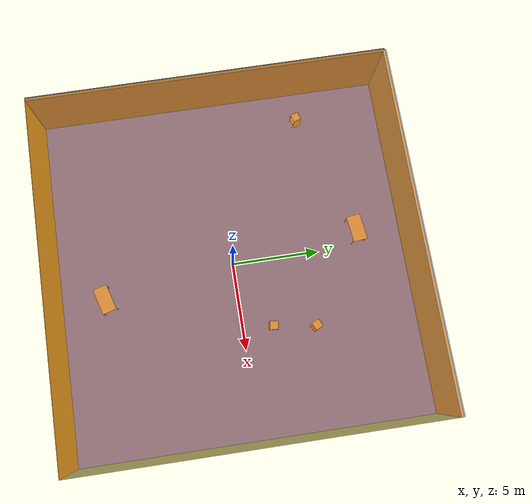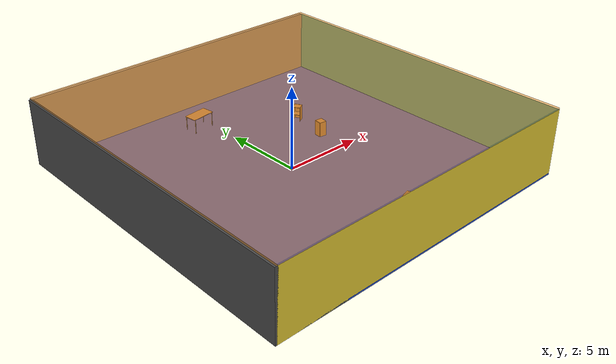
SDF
<sdf version="1.4">
 <world name="default">
  <physics type="ode">
   <max_step_size>0.001</max_step_size>
   <real_time_factor>1</real_time_factor>
   <real_time_update_rate>1000</real_time_update_rate>
   <gravity>0 0 -9.8</gravity>
  </physics>
  <scene><ambient>0.4 0.4 0.4 1</ambient><background>0.7 0.7 0.7 1</background><shadows>1</shadows></scene>
  <model name="Surrounding">
   <static>1</static>
   <link name="Ceiling">
    <collision name="Ceiling_Collision"><geometry><box><size>20 20 0.1</size></box></geometry></collision>
    <visual name="Ceiling_Visual">
     <geometry><box><size>20 20 0.1</size></box></geometry>
     <material>
      <script>
       <uri>file://media/materials/scripts/gazebo.material</uri>
       <name>Gazebo/OrangeTransparent</name>
      </script>
     </material>
    </visual>
    <pose>0 0 4.05 0 0 0</pose>
   </link>
   <link name="Wall_South">
    <collision name="Wall_South_Collision">
     <geometry><box><size>20 0 4</size></box></geometry>
     <pose>0 0 2 0 -0 0</pose>
    </collision>
    <visual name="Wall_South_Visual">
     <pose>0 0 2 0 -0 0</pose>
     <geometry><box><size>20 0 4</size></box></geometry>
     <material>
      <script><uri>file://media/materials/scripts/gazebo.material</uri><name>Gazebo/ZincYellow</name></script>
     </material>
    </visual>
    <velocity_decay><linear>0</linear><angular>0</angular></velocity_decay>
    <pose>0 -10 0 0 -0 0</pose>
   </link>
   <link name="Wall_East">
    <collision name="Wall_21_Collision">
     <geometry><box><size>20 0 4</size></box></geometry>
     <pose>0 0 2 0 -0 0</pose>
    </collision>
    <visual name="Wall_21_Visual">
     <pose>0 0 2 0 -0 0</pose>
     <geometry><box><size>20 0 4</size></box></geometry>
     <material>
      <script><uri>file://media/materials/scripts/gazebo.material</uri><name>Gazebo/TurquoiseGlow</name></script>
     </material>
    </visual>
    <velocity_decay><linear>0</linear><angular>0</angular></velocity_decay>
    <pose>10 0 0 0 -0 1.5708</pose>
   </link>
   <link name="Wall_North">
    <collision name="Wall_22_Collision">
     <geometry><box><size>20 0.2 4</size></box></geometry>
     <pose>0 0 2 0 -0 0</pose>
    </collision>
    <visual name="Wall_22_Visual">
     <pose>0 0 2 0 -0 0</pose>
     <geometry><box><size>20 0.2 4</size></box></geometry>
     <material>
      <script><uri>file://media/materials/scripts/gazebo.material</uri><name>Gazebo/GreyGradientSky</name></script>
     </material>
    </visual>
    <velocity_decay><linear>0</linear><angular>0</angular></velocity_decay>
    <pose>0 10 0 0 -0 0</pose>
   </link>
   <link name="Wall_West">
    <collision name="Wall_23_Collision">
     <geometry><box><size>20 0.2 4</size></box></geometry>
     <pose>0 0 2 0 -0 0</pose>
    </collision>
    <visual name="Wall_23_Visual">
     <pose>0 0 2 0 -0 0</pose>
     <geometry><box><size>20 0.2 4</size></box></geometry>
     <material>
      <script><uri>file://media/materials/scripts/gazebo.material</uri><name>Gazebo/DarkGrey</name></script>
     </material>
    </visual>
    <velocity_decay><linear>0</linear><angular>0</angular></velocity_decay>
    <pose>-10 0 0 0 0 -1.5708</pose>
   </link>
   <link name="Ground_link">
    <collision name="collision">
     <pose>0 0 .05 0 -0 0</pose>
     <geometry><box><size>20 20 0.1</size></box></geometry>
    </collision>
    <visual name="visual">
     <pose>0 0 .05 0 -0 0</pose>
     <geometry><box><size>20 20 0.1</size></box></geometry>
     <material>
      <script><uri>file://media/materials/scripts/gazebo.material</uri><name>Gazebo/BlueLaser</name></script>
     </material>
    </visual>
   </link>
   <static>1</static>
  </model>
  <spherical_coordinates>
   <surface_model>EARTH_WGS84</surface_model>
   <latitude_deg>0</latitude_deg>
   <longitude_deg>0</longitude_deg>
   <elevation>0</elevation>
   <heading_deg>0</heading_deg>
  </spherical_coordinates>
  <light name="lightball_0" type="diffuse">
   <diffuse>0.8 0.8 0.8 1</diffuse>
   <specular>0.2 0.2 0.2 1</specular>
   <attenuation>
    <range>100</range>
    <constant>0.7</constant>
    <linear>0.01</linear>
    <quadratic>0.001</quadratic>
   </attenuation>
   <direction>-0.5 0.1 -0.9</direction>
   <pose>-7.80989832959 -7.81728381017 3.64259863806 0 0 0</pose>
  </light>
  <light name="lightball_1" type="diffuse">
   <diffuse>0.8 0.8 0.8 1</diffuse>
   <specular>0.2 0.2 0.2 1</specular>
   <attenuation>
    <range>100</range>
    <constant>0.7</constant>
    <linear>0.01</linear>
    <quadratic>0.001</quadratic>
   </attenuation>
   <direction>-0.5 0.1 -0.9</direction>
   <pose>9.16926936986 0.890917695833 3.38056855402 0 0 0</pose>
  </light>
  <light name="lightball_2" type="diffuse">
   <diffuse>0.8 0.8 0.8 1</diffuse>
   <specular>0.2 0.2 0.2 1</specular>
   <attenuation>
    <range>100</range>
    <constant>0.7</constant>
    <linear>0.01</linear>
    <quadratic>0.001</quadratic>
   </attenuation>
   <direction>-0.5 0.1 -0.9</direction>
   <pose>-3.02686275191 5.18378091295 0.875292054956 0 0 0</pose>
  </light>
  <light name="lightball_3" type="diffuse">
   <diffuse>0.8 0.8 0.8 1</diffuse>
   <specular>0.2 0.2 0.2 1</specular>
   <attenuation>
    <range>100</range>
    <constant>0.7</constant>
    <linear>0.01</linear>
    <quadratic>0.001</quadratic>
   </attenuation>
   <direction>-0.5 0.1 -0.9</direction>
   <pose>-9.2741234504 4.15451052325 2.42065847624 0 0 0</pose>
  </light>
  <light name="lightball_4" type="diffuse">
   <diffuse>0.8 0.8 0.8 1</diffuse>
   <specular>0.2 0.2 0.2 1</specular>
   <attenuation>
    <range>100</range>
    <constant>0.7</constant>
    <linear>0.01</linear>
    <quadratic>0.001</quadratic>
   </attenuation>
   <direction>-0.5 0.1 -0.9</direction>
   <pose>9.53222409324 -5.43431180726 0.542105368913 0 0 0</pose>
  </light>
  <light name="lightball_5" type="diffuse">
   <diffuse>0.8 0.8 0.8 1</diffuse>
   <specular>0.2 0.2 0.2 1</specular>
   <attenuation>
    <range>100</range>
    <constant>0.7</constant>
    <linear>0.01</linear>
    <quadratic>0.001</quadratic>
   </attenuation>
   <direction>-0.5 0.1 -0.9</direction>
   <pose>8.50005592814 5.15815952211 2.66154704028 0 0 0</pose>
  </light>
  <light name="lightball_6" type="diffuse">
   <diffuse>0.8 0.8 0.8 1</diffuse>
   <specular>0.2 0.2 0.2 1</specular>
   <attenuation>
    <range>100</range>
    <constant>0.7</constant>
    <linear>0.01</linear>
    <quadratic>0.001</quadratic>
   </attenuation>
   <direction>-0.5 0.1 -0.9</direction>
   <pose>-4.67892823467 -8.30785120066 2.32256914131 0 0 0</pose>
  </light>
  <light name="lightball_7" type="diffuse">
   <diffuse>0.8 0.8 0.8 1</diffuse>
   <specular>0.2 0.2 0.2 1</specular>
   <attenuation>
    <range>100</range>
    <constant>0.7</constant>
    <linear>0.01</linear>
    <quadratic>0.001</quadratic>
   </attenuation>
   <direction>-0.5 0.1 -0.9</direction>
   <pose>1.05784513445 -8.89747258098 2.47153222511 0 0 0</pose>
  </light>
  <light name="lightball_8" type="diffuse">
   <diffuse>0.8 0.8 0.8 1</diffuse>
   <specular>0.2 0.2 0.2 1</specular>
   <attenuation>
    <range>100</range>
    <constant>0.7</constant>
    <linear>0.01</linear>
    <quadratic>0.001</quadratic>
   </attenuation>
   <direction>-0.5 0.1 -0.9</direction>
   <pose>-1.75467272501 2.49560155071 1.70390867021 0 0 0</pose>
  </light>
  <include><uri>model://cabinet</uri><pose>-8.0575844287 4.9558927701 0 0 0 1.87431957718</pose></include>
  <include><uri>model://table</uri><pose>-0.876609926347 7.29015067647 0 0 0 0.124073957987</pose></include>
  <include><uri>model://table</uri><pose>1.1005065063 -7.43422127321 0 0 0 0.28120130713</pose></include>
  <include><uri>model://cabinet</uri><pose>3.91045212325 1.71564124489 0 0 0 3.02231777891</pose></include>
  <include><uri>model://cabinet</uri><pose>4.23690159626 4.10212039659 0 0 0 0.489485580057</pose></include>
 </world>
</sdf>

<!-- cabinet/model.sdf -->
<sdf version="1.5">
  <model name="cabinet">
    <static>true</static>
    <link name="cabinet_bottom_plate">
      <inertial>
        <pose>0 0 -1 0 0 0</pose>
        <inertia>
          <ixx>2.050000</ixx>
          <ixy>0</ixy>
          <ixz>0</ixz>
          <iyy>2.050000</iyy>
          <iyz>0</iyz>
          <izz>2.050000</izz>
        </inertia>
        <mass>25.000000</mass>
      </inertial>
      <collision name="cabinet_bottom_plate_geom">
        <pose>0 0 0.010000 0 0 0</pose>
        <geometry>
          <box>
            <size>0.450000 0.450000 0.020000</size>
          </box>
        </geometry>
      </collision>
      <visual name="cabinet_bottom_plate_geom_visual">
        <pose>0 0 0.010000 0 0 0</pose>
        <geometry>
          <box>
            <size>0.450000 0.450000 0.020000</size>
          </box>
        </geometry>
        <material>
          <script>
            <uri>model://media/materials/scripts/gazebo.material</uri>
            <name>Gazebo/Wood</name>
          </script>
        </material>
      </visual>
      <collision name="cabinet_bottom_plate_geom_cabinet_back_plate">
        <pose>0.235000 0 0.510000 0 0 0</pose>
        <geometry>
          <box>
            <size>0.020000 0.450000 1.020000</size>
          </box>
        </geometry>
      </collision>
      <visual name="cabinet_bottom_plate_geom_cabinet_back_plate_visual">
        <pose>0.235000 0 0.510000 0 0 0</pose>
        <geometry>
          <box>
            <size>0.020000 0.450000 1.020000</size>
          </box>
        </geometry>
        <material>
          <script>
            <uri>model://media/materials/scripts/gazebo.material</uri>
            <name>Gazebo/Wood</name>
          </script>
        </material>
      </visual>
      <collision name="cabinet_bottom_plate_geom_cabinet_left_plate">
        <pose>0 0.235000 0.510000 0 0 0</pose>
        <geometry>
          <box>
            <size>0.450000 0.020000 1.020000</size>
          </box>
        </geometry>
      </collision>
      <visual name="cabinet_bottom_plate_geom_cabinet_left_plate_visual">
        <pose>0 0.235000 0.510000 0 0 0</pose>
        <geometry>
          <box>
            <size>0.450000 0.020000 1.020000</size>
          </box>
        </geometry>
        <material>
          <script>
            <uri>model://media/materials/scripts/gazebo.material</uri>
            <name>Gazebo/Wood</name>
          </script>
        </material>
      </visual>
      <collision name="cabinet_bottom_plate_geom_cabinet_middle_plate">
        <pose>0 0 0.510000 0 0 0</pose>
        <geometry>
          <box>
            <size>0.450000 0.450000 0.020000</size>
          </box>
        </geometry>
      </collision>
      <visual name="cabinet_bottom_plate_geom_cabinet_middle_plate_visual">
        <pose>0 0 0.510000 0 0 0</pose>
        <geometry>
          <box>
            <size>0.450000 0.450000 0.020000</size>
          </box>
        </geometry>
        <material>
          <script>
            <uri>model://media/materials/scripts/gazebo.material</uri>
            <name>Gazebo/Wood</name>
          </script>
        </material>
      </visual>
      <collision name="cabinet_bottom_plate_geom_cabinet_right_plate">
        <pose>0 -0.235000 0.510000 0 0 0</pose>
        <geometry>
          <box>
            <size>0.450000 0.020000 1.020000</size>
          </box>
        </geometry>
      </collision>
      <visual name="cabinet_bottom_plate_geom_cabinet_right_plate_visual">
        <pose>0 -0.235000 0.510000 0 0 0</pose>
        <geometry>
          <box>
            <size>0.450000 0.020000 1.020000</size>
          </box>
        </geometry>
        <material>
          <script>
            <uri>model://media/materials/scripts/gazebo.material</uri>
            <name>Gazebo/Wood</name>
          </script>
        </material>
      </visual>
      <collision name="cabinet_bottom_plate_geom_cabinet_top_plate">
        <pose>0 0 1.010000 0 0 0</pose>
        <geometry>
          <box>
            <size>0.450000 0.450000 0.020000</size>
          </box>
        </geometry>
      </collision>
      <visual name="cabinet_bottom_plate_geom_cabinet_top_plate_visual">
        <pose>0 0 1.010000 0 0 0</pose>
        <geometry>
          <box>
            <size>0.450000 0.450000 0.020000</size>
          </box>
        </geometry>
        <material>
          <script>
            <uri>model://media/materials/scripts/gazebo.material</uri>
            <name>Gazebo/Wood</name>
          </script>
        </material>
      </visual>
    </link>
  </model>
</sdf>

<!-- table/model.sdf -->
<sdf version="1.5">
  <model name="table">
    <static>true</static>
    <link name="link">
      <collision name="surface">
        <pose>0 0 1.0 0 0 0</pose>
        <geometry>
          <box>
            <size>1.5 0.8 0.03</size>
          </box>
        </geometry>
        <surface>
          <friction>
            <ode>
              <mu>0.6</mu>
              <mu2>0.6</mu2>
            </ode>
          </friction>
        </surface>
      </collision>
      <visual name="visual1">
        <pose>0 0 1.0 0 0 0</pose>
        <geometry>
          <box>
            <size>1.5 0.8 0.03</size>
          </box>
        </geometry>
        <material>
          <script>
            <uri>model://media/materials/scripts/gazebo.material</uri>
            <name>Gazebo/Wood</name>
          </script>
        </material>
      </visual>
      <collision name="front_left_leg">
        <pose>0.68 0.38 0.5 0 0 0</pose>
        <geometry>
          <cylinder>
            <radius>0.02</radius>
            <length>1.0</length>
          </cylinder>
        </geometry>
      </collision>
      <visual name="front_left_leg">
        <pose>0.68 0.38 0.5 0 0 0</pose>
        <geometry>
          <cylinder>
            <radius>0.02</radius>
            <length>1.0</length>
          </cylinder>
        </geometry>
        <material>
          <script>
            <uri>model://media/materials/scripts/gazebo.material</uri>
            <name>Gazebo/Grey</name>
          </script>
        </material>
      </visual>
      <collision name="front_right_leg">
        <pose>0.68 -0.38 0.5 0 0 0</pose>
        <geometry>
          <cylinder>
            <radius>0.02</radius>
            <length>1.0</length>
          </cylinder>
        </geometry>
      </collision>
      <visual name="front_right_leg">
        <pose>0.68 -0.38 0.5 0 0 0</pose>
        <geometry>
          <cylinder>
            <radius>0.02</radius>
            <length>1.0</length>
          </cylinder>
        </geometry>
        <material>
          <script>
            <uri>model://media/materials/scripts/gazebo.material</uri>
            <name>Gazebo/Grey</name>
          </script>
        </material>
      </visual>
      <collision name="back_right_leg">
        <pose>-0.68 -0.38 0.5 0 0 0</pose>
        <geometry>
          <cylinder>
            <radius>0.02</radius>
            <length>1.0</length>
          </cylinder>
        </geometry>
      </collision>
      <visual name="back_right_leg">
        <pose>-0.68 -0.38 0.5 0 0 0</pose>
        <geometry>
          <cylinder>
            <radius>0.02</radius>
            <length>1.0</length>
          </cylinder>
        </geometry>
        <material>
          <script>
            <uri>model://media/materials/scripts/gazebo.material</uri>
            <name>Gazebo/Grey</name>
          </script>
        </material>
      </visual>
      <collision name="back_left_leg">
        <pose>-0.68 0.38 0.5 0 0 0</pose>
        <geometry>
          <cylinder>
            <radius>0.02</radius>
            <length>1.0</length>
          </cylinder>
        </geometry>
      </collision>
      <visual name="back_left_leg">
        <pose>-0.68 0.38 0.5 0 0 0</pose>
        <geometry>
          <cylinder>
            <radius>0.02</radius>
            <length>1.0</length>
          </cylinder>
        </geometry>
        <material>
          <script>
            <uri>model://media/materials/scripts/gazebo.material</uri>
            <name>Gazebo/Grey</name>
          </script>
        </material>
      </visual>
    </link>
  </model>
</sdf>
